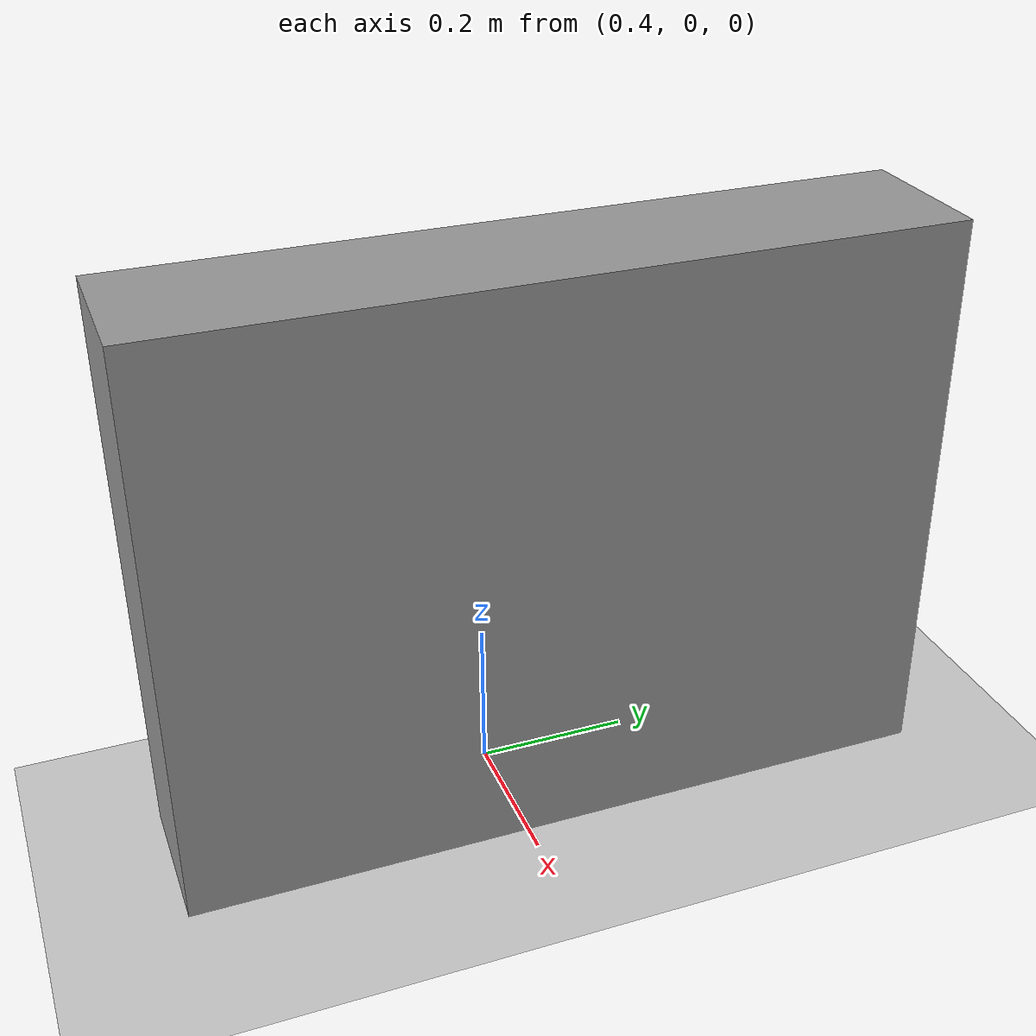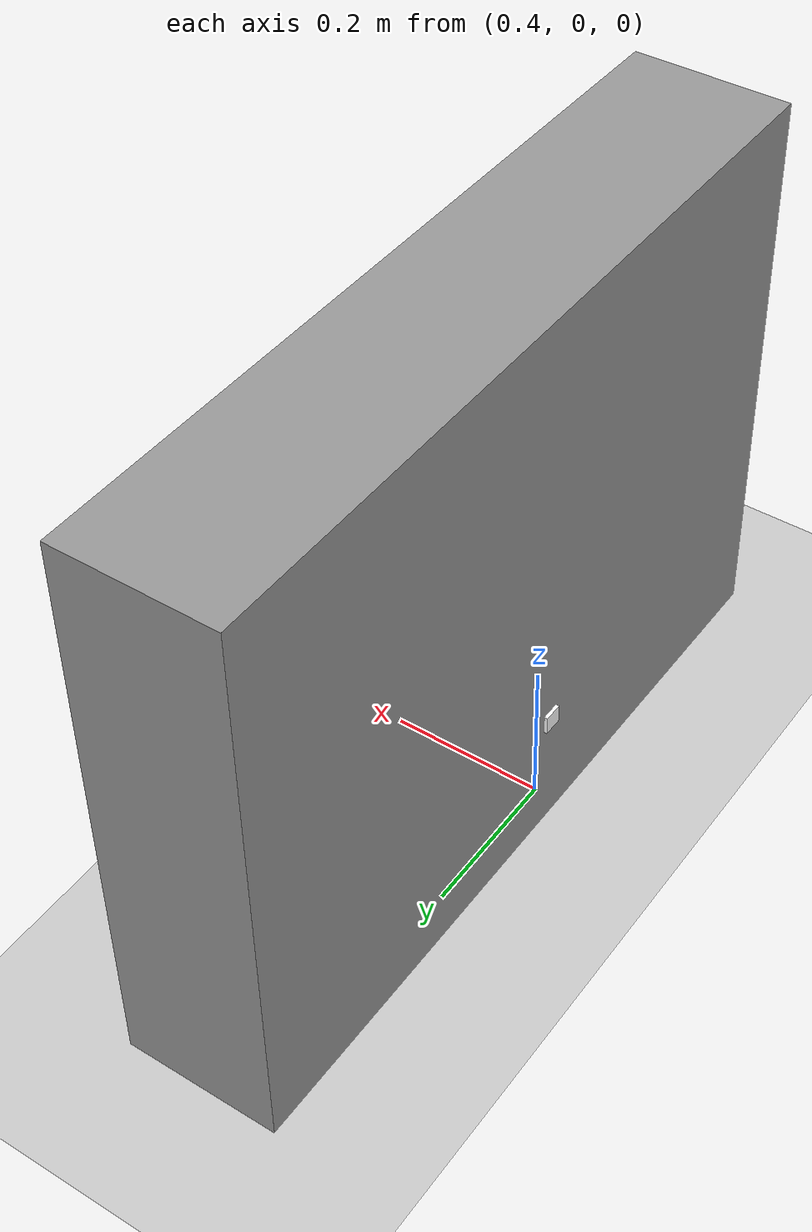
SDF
<sdf version="1.7">
 <world name="default">
  <light name="sun" type="directional">
   <pose>0 0 10 0 -0 0</pose>
   <diffuse>0.8 0.8 0.8 1</diffuse>
   <specular>0.2 0.2 0.2 1</specular>
   <attenuation>
    <range>1000</range>
    <constant>0.9</constant>
    <linear>0.01</linear>
    <quadratic>0.001</quadratic>
   </attenuation>
   <direction>-0.5 0.1 -0.9</direction>
   <spot><inner_angle>0</inner_angle><outer_angle>0</outer_angle><falloff>0</falloff></spot>
  </light>
  <model name="ground_plane">
   <static>1</static>
   <link name="link">
    <collision name="collision">
     <geometry><plane><normal>0 0 1</normal><size>100 100</size></plane></geometry>
     <surface>
      <contact><collide_bitmask>65535</collide_bitmask></contact>
      <friction><ode><mu>100</mu><mu2>50</mu2></ode></friction>
     </surface>
    </collision>
    <visual name="visual">
     <cast_shadows>0</cast_shadows>
     <geometry><plane><normal>0 0 1</normal><size>100 100</size></plane></geometry>
     <material>
      <script><uri>file://media/materials/scripts/gazebo.material</uri><name>Gazebo/Grey</name></script>
     </material>
    </visual>
   </link>
  </model>
  <gravity>0 0 -9.8</gravity>
  <magnetic_field>6e-06 2.3e-05 -4.2e-05</magnetic_field>
  <atmosphere type="adiabatic"/>
  <physics type="ode">
   <max_step_size>0.001</max_step_size>
   <real_time_factor>1</real_time_factor>
   <real_time_update_rate>1000</real_time_update_rate>
  </physics>
  <scene><ambient>0.4 0.4 0.4 1</ambient><background>0.7 0.7 0.7 1</background><shadows>1</shadows></scene>
  <spherical_coordinates>
   <surface_model>EARTH_WGS84</surface_model>
   <latitude_deg>0</latitude_deg>
   <longitude_deg>0</longitude_deg>
   <elevation>0</elevation>
   <heading_deg>0</heading_deg>
  </spherical_coordinates>
  <model name="my_wall_new">
   <link name="link">
    <inertial>
     <mass>100</mass>
     <inertia><ixx>13.0208</ixx><ixy>0</ixy><ixz>0</ixz><iyy>5.02083</iyy><iyz>0</iyz><izz>8.66667</izz></inertia>
    </inertial>
    <visual name="visual">
     <geometry><box><size>0.2 1 0.75</size></box></geometry>
     <material>
      <script><name>Gazebo/Grey</name><uri>file://media/materials/scripts/gazebo.material</uri></script>
      <shader type="pixel"><normal_map>__default__</normal_map></shader>
      <ambient>0.3 0.3 0.3 1</ambient>
      <diffuse>0.7 0.7 0.7 1</diffuse>
      <specular>0.01 0.01 0.01 1</specular>
      <emissive>0 0 0 1</emissive>
     </material>
    </visual>
    <collision name="collision">
     <geometry><box><size>0.2 1 0.75</size></box></geometry>
     <surface>
      <friction>
       <ode><mu>1</mu><mu2>1</mu2><fdir1>0 0 0</fdir1><slip1>0</slip1><slip2>0</slip2></ode>
       <torsional>
        <coefficient>1</coefficient>
        <patch_radius>0</patch_radius>
        <surface_radius>0</surface_radius>
        <use_patch_radius>1</use_patch_radius>
        <ode><slip>0</slip></ode>
       </torsional>
      </friction>
      <bounce><restitution_coefficient>0</restitution_coefficient><threshold>1e+06</threshold></bounce>
      <contact>
       <collide_without_contact>0</collide_without_contact>
       <collide_without_contact_bitmask>1</collide_without_contact_bitmask>
       <collide_bitmask>1</collide_bitmask>
       <ode>
        <soft_cfm>0</soft_cfm>
        <soft_erp>0.2</soft_erp>
        <kp>1e+13</kp>
        <kd>1</kd>
        <max_vel>0.01</max_vel>
        <min_depth>0</min_depth>
       </ode>
       <bullet>
        <split_impulse>1</split_impulse>
        <split_impulse_penetration_threshold>-0.01</split_impulse_penetration_threshold>
        <soft_cfm>0</soft_cfm>
        <soft_erp>0.2</soft_erp>
        <kp>1e+13</kp>
        <kd>1</kd>
       </bullet>
      </contact>
     </surface>
    </collision>
   </link>
   <static>1</static>
   <pose>0.467522 0.060223 0.375374 0 -0 0</pose>
  </model>
  <model name="Apriltag36_11_00000_mod_new2">
   <link name="main">
    <pose>0 0 0 3.14159 -1.57079 3.14159</pose>
    <inertial>
     <mass>1</mass>
     <inertia><ixx>1</ixx><ixy>0</ixy><ixz>0</ixz><iyy>1</iyy><iyz>0</iyz><izz>1</izz></inertia>
    </inertial>
    <visual name="main_Visual">
     <geometry><box><size>0.025 0.025 0.01</size></box></geometry>
     <material>
      <script>
       <uri>model://Apriltag36_11_00000/materials/scripts</uri>
       <uri>model://Apriltag36_11_00000/materials/textures</uri>
       <name>Apriltag36_11_00000</name>
      </script>
      <shader type="pixel"><normal_map>__default__</normal_map></shader>
      <ambient>1 1 1 1</ambient>
      <diffuse>1 1 1 1</diffuse>
      <specular>0 0 0 1</specular>
      <emissive>0 0 0 1</emissive>
     </material>
    </visual>
   </link>
   <static>1</static>
   <pose>0.368221 0.025 0.17 0 -0 0</pose>
  </model>
 </world>
</sdf>
